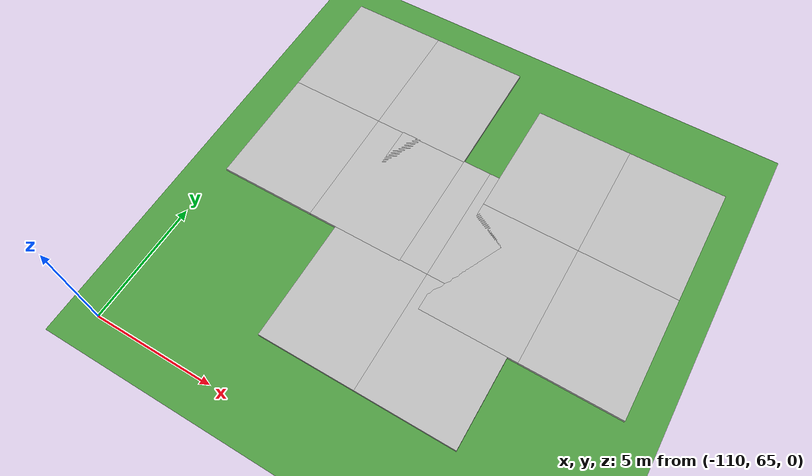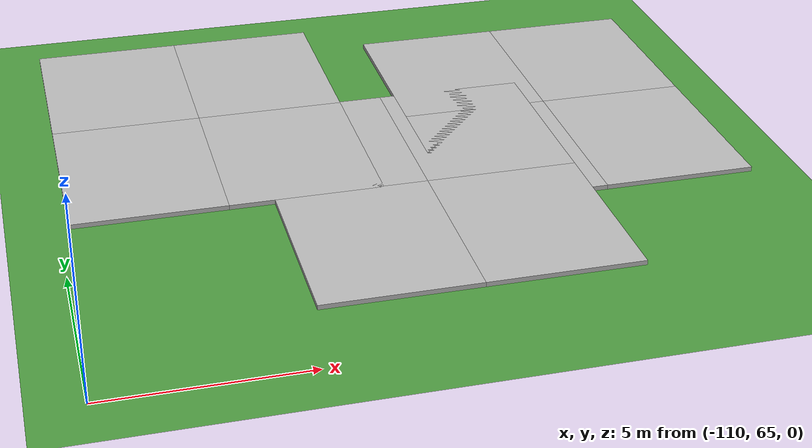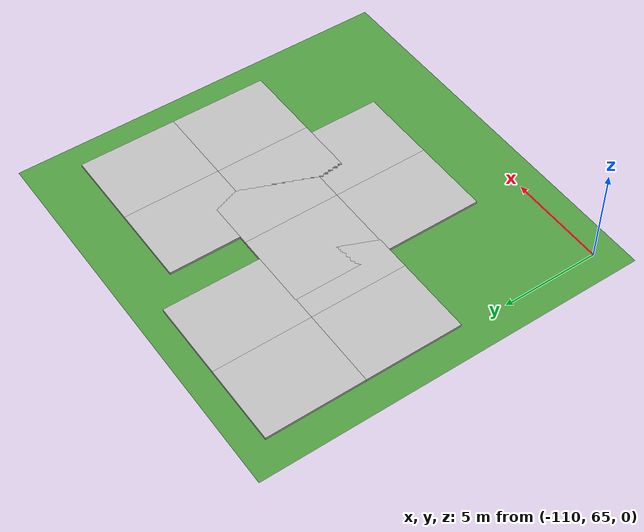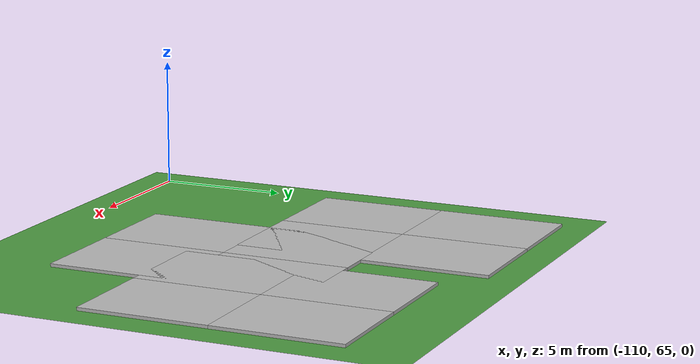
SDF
<sdf version="1.7">
 <world name="default">
  <physics type="ode">
   <ode>
    <solver>
     <type>quick</type>
     <iters>100</iters>
     <sor>1</sor>
     <use_dynamic_moi_rescaling>0</use_dynamic_moi_rescaling>
    </solver>
    <constraints>
     <cfm>0</cfm>
     <erp>0.9</erp>
     <contact_max_correcting_vel>0.1</contact_max_correcting_vel>
     <contact_surface_layer>0</contact_surface_layer>
    </constraints>
   </ode>
   <real_time_update_rate>-1</real_time_update_rate>
   <max_step_size>0.001</max_step_size>
   <real_time_factor>1</real_time_factor>
  </physics>
  <model name="ground_plane">
   <static>1</static>
   <link name="link">
    <collision name="collision">
     <geometry><plane><normal>0 0 1</normal><size>5000 5000</size></plane></geometry>
     <surface><friction><ode><mu>1</mu><mu2>1</mu2></ode></friction></surface>
    </collision>
    <visual name="grass">
     <pose>0 0 -0.1 0 -0 0</pose>
     <cast_shadows>0</cast_shadows>
     <geometry><plane><normal>0 0 1</normal><size>5000 5000</size></plane></geometry>
     <material>
      <script><uri>file://media/materials/scripts/gazebo.material</uri><name>Gazebo/Grass</name></script>
     </material>
    </visual>
   </link>
  </model>
  <light name="sun" type="directional">
   <pose>0 0 10 0 -0 0</pose>
   <diffuse>0.8 0.8 0.8 1</diffuse>
   <specular>0.2 0.2 0.2 1</specular>
   <attenuation>
    <range>1000</range>
    <constant>0.9</constant>
    <linear>0.01</linear>
    <quadratic>0.001</quadratic>
   </attenuation>
   <direction>-0.5 0.1 -0.9</direction>
   <spot><inner_angle>0</inner_angle><outer_angle>0</outer_angle><falloff>0</falloff></spot>
   <visualize>0</visualize>
  </light>
  <gravity>0 0 -9.8</gravity>
  <magnetic_field>6e-06 2.3e-05 -4.2e-05</magnetic_field>
  <atmosphere type="adiabatic"/>
  <scene><ambient>0.4 0.4 0.4 1</ambient><background>0.7 0.7 0.7 1</background><shadows>1</shadows></scene>
  <spherical_coordinates>
   <surface_model>EARTH_WGS84</surface_model>
   <latitude_deg>0</latitude_deg>
   <longitude_deg>0</longitude_deg>
   <elevation>0</elevation>
   <heading_deg>0</heading_deg>
  </spherical_coordinates>
  <model name="ground_plane_0">
   <static>1</static>
   <link name="link">
    <collision name="collision">
     <geometry><plane><normal>0 0 1</normal><size>100 100</size></plane></geometry>
     <surface>
      <contact><collide_bitmask>65535</collide_bitmask></contact>
      <friction><ode><mu>100</mu><mu2>50</mu2></ode></friction>
     </surface>
    </collision>
    <visual name="visual">
     <cast_shadows>0</cast_shadows>
     <geometry><plane><normal>0 0 1</normal><size>100 100</size></plane></geometry>
     <material>
      <script><uri>file://media/materials/scripts/gazebo.material</uri><name>Gazebo/Grey</name></script>
     </material>
    </visual>
   </link>
   <pose>23.7201 2.14936 0 0 -0 0</pose>
  </model>
  <model name="mud_box_3">
   <static>1</static>
   <link name="link">
    <collision name="collision"><geometry><box><size>8 10 0.2</size></box></geometry></collision>
    <visual name="visual_1">
     <pose>-2 2.5 0 0 -0 0</pose>
     <cast_shadows>0</cast_shadows>
     <geometry><box><size>4 5 0.2</size></box></geometry>
     <material>
      <script>
       <uri>model://mud_box/materials/scripts</uri>
       <uri>model://mud_box/materials/textures</uri>
       <name>vrc/mud</name>
      </script>
     </material>
    </visual>
    <visual name="visual_2">
     <pose>2 2.5 0 0 -0 0</pose>
     <cast_shadows>0</cast_shadows>
     <geometry><box><size>4 5 0.2</size></box></geometry>
     <material>
      <script>
       <uri>model://mud_box/materials/scripts</uri>
       <uri>model://mud_box/materials/textures</uri>
       <name>vrc/mud</name>
      </script>
     </material>
    </visual>
    <visual name="visual_3">
     <pose>2 -2.5 0 0 -0 0</pose>
     <cast_shadows>0</cast_shadows>
     <geometry><box><size>4 5 0.2</size></box></geometry>
     <material>
      <script>
       <uri>model://mud_box/materials/scripts</uri>
       <uri>model://mud_box/materials/textures</uri>
       <name>vrc/mud</name>
      </script>
     </material>
    </visual>
    <visual name="visual_4">
     <pose>-2 -2.5 0 0 -0 0</pose>
     <cast_shadows>0</cast_shadows>
     <geometry><box><size>4 5 0.2</size></box></geometry>
     <material>
      <script>
       <uri>model://mud_box/materials/scripts</uri>
       <uri>model://mud_box/materials/textures</uri>
       <name>vrc/mud</name>
      </script>
     </material>
    </visual>
   </link>
   <pose>-100.61 72.2957 0 0 -0 0</pose>
  </model>
  <model name="mud_box_3_clone_0">
   <static>1</static>
   <link name="link">
    <collision name="collision"><geometry><box><size>8 10 0.2</size></box></geometry></collision>
    <visual name="visual_1">
     <pose>-2 2.5 0 0 -0 0</pose>
     <cast_shadows>0</cast_shadows>
     <geometry><box><size>4 5 0.2</size></box></geometry>
     <material>
      <script>
       <uri>model://mud_box/materials/scripts</uri>
       <uri>model://mud_box/materials/textures</uri>
       <name>vrc/mud</name>
      </script>
     </material>
    </visual>
    <visual name="visual_2">
     <pose>2 2.5 0 0 -0 0</pose>
     <cast_shadows>0</cast_shadows>
     <geometry><box><size>4 5 0.2</size></box></geometry>
     <material>
      <script>
       <uri>model://mud_box/materials/scripts</uri>
       <uri>model://mud_box/materials/textures</uri>
       <name>vrc/mud</name>
      </script>
     </material>
    </visual>
    <visual name="visual_3">
     <pose>2 -2.5 0 0 -0 0</pose>
     <cast_shadows>0</cast_shadows>
     <geometry><box><size>4 5 0.2</size></box></geometry>
     <material>
      <script>
       <uri>model://mud_box/materials/scripts</uri>
       <uri>model://mud_box/materials/textures</uri>
       <name>vrc/mud</name>
      </script>
     </material>
    </visual>
    <visual name="visual_4">
     <pose>-2 -2.5 0 0 -0 0</pose>
     <cast_shadows>0</cast_shadows>
     <geometry><box><size>4 5 0.2</size></box></geometry>
     <material>
      <script>
       <uri>model://mud_box/materials/scripts</uri>
       <uri>model://mud_box/materials/textures</uri>
       <name>vrc/mud</name>
      </script>
     </material>
    </visual>
   </link>
   <pose>-105.777 77.2628 0 0 -0 0</pose>
  </model>
  <model name="mud_box_3_clone_1">
   <static>1</static>
   <link name="link">
    <collision name="collision"><geometry><box><size>8 10 0.2</size></box></geometry></collision>
    <visual name="visual_1">
     <pose>-2 2.5 0 0 -0 0</pose>
     <cast_shadows>0</cast_shadows>
     <geometry><box><size>4 5 0.2</size></box></geometry>
     <material>
      <script>
       <uri>model://mud_box/materials/scripts</uri>
       <uri>model://mud_box/materials/textures</uri>
       <name>vrc/mud</name>
      </script>
     </material>
    </visual>
    <visual name="visual_2">
     <pose>2 2.5 0 0 -0 0</pose>
     <cast_shadows>0</cast_shadows>
     <geometry><box><size>4 5 0.2</size></box></geometry>
     <material>
      <script>
       <uri>model://mud_box/materials/scripts</uri>
       <uri>model://mud_box/materials/textures</uri>
       <name>vrc/mud</name>
      </script>
     </material>
    </visual>
    <visual name="visual_3">
     <pose>2 -2.5 0 0 -0 0</pose>
     <cast_shadows>0</cast_shadows>
     <geometry><box><size>4 5 0.2</size></box></geometry>
     <material>
      <script>
       <uri>model://mud_box/materials/scripts</uri>
       <uri>model://mud_box/materials/textures</uri>
       <name>vrc/mud</name>
      </script>
     </material>
    </visual>
    <visual name="visual_4">
     <pose>-2 -2.5 0 0 -0 0</pose>
     <cast_shadows>0</cast_shadows>
     <geometry><box><size>4 5 0.2</size></box></geometry>
     <material>
      <script>
       <uri>model://mud_box/materials/scripts</uri>
       <uri>model://mud_box/materials/textures</uri>
       <name>vrc/mud</name>
      </script>
     </material>
    </visual>
   </link>
   <pose>-96.2023 75.9588 0 0 -0 0</pose>
  </model>
 </world>
</sdf>
